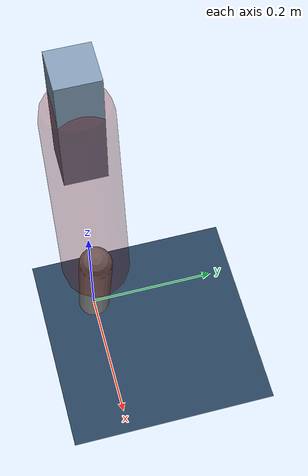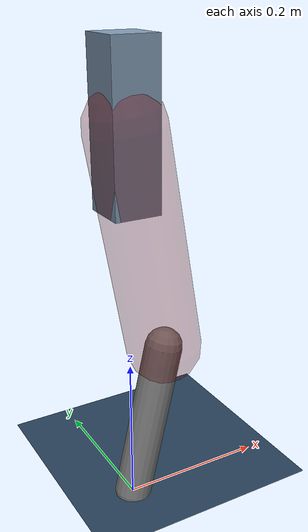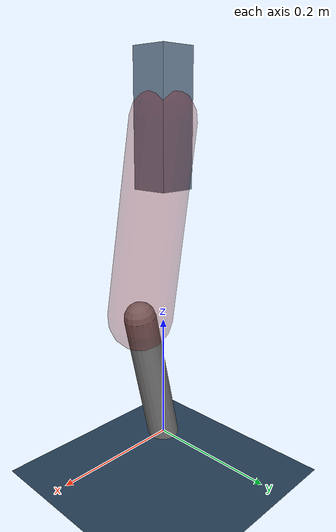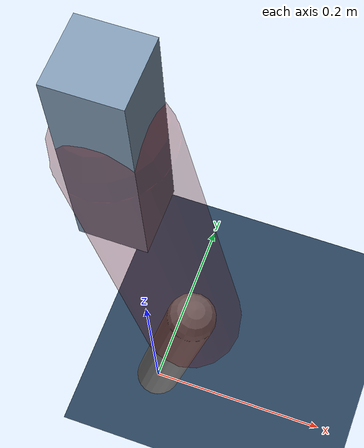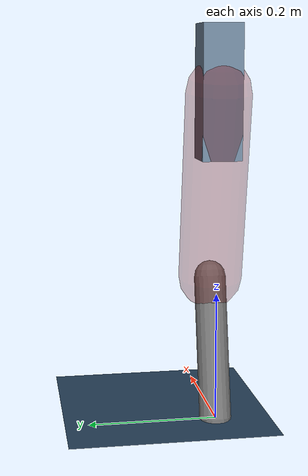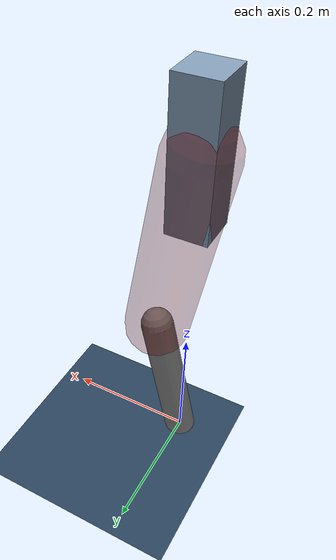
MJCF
<mujoco model="Hopper2D">
	<compiler inertiafromgeom="true" angle="radian" />
	<option timestep="0.001" integrator="implicit" cone="elliptic" solver="Newton" tolerance="1e-10" />

	<default>
		<geom contype="1" conaffinity="1" condim="3" friction="2 0.005 0.0001" solref="0.005 1" />
		<joint limited="true" damping="0.1" />
	</default>

	<asset>
		<texture name="skybox" type="skybox" builtin="gradient" rgb1=".4 .6 .8" rgb2="0 0 0" width="800" height="800" />
		<texture name="grid" type="2d" builtin="checker" rgb1=".1 .2 .3" rgb2=".2 .3 .4" width="300" height="300" mark="edge" markrgb=".2 .3 .4" />
		<material name="ground" texture="grid" texrepeat="1 1" texuniform="true" reflectance="0.1" />
		<material name="leg" rgba="0.5 0.6 0.7 1" />
	</asset>

	<worldbody>

		<geom name="floor" type="plane" size="5 5 0.25" material="ground" />

		<light directional="false" diffuse="0.8 0.8 0.8" specular="0.3 0.3 0.3" pos="0 0 2" dir="0 0 -1" />
		<light mode="targetbodycom" target="base" directional="false" diffuse="0.8 0.8 0.8" specular="0.3 0.3 0.3" pos="0 0 2" dir="0 0 -1" />

		<camera name="fixed" pos="0 -2 1" xyaxes="1 0 0 0 0 1" />
		<camera name="tracking" mode="trackcom" pos="0 -3 1" />

		<body name="root" pos="0 0 0.5084425187798205">
			<joint name="slide_x" type="slide" axis="1 0 0" range="-100 100" />
			<joint name="slide_z" type="slide" axis="0 0 1" range="0 10" />

			<body name="base" pos="0 0 0">
				<geom name="torso" type="box" size="0.03 0.03 0.1" mass="1.793" material="leg" />

				<body name="link1" pos="0 0 0" euler="0 1.3999191443553864 0">
					<joint type="hinge" axis="0 -1 0" pos="0 0 0" name="hinge1" limited="true" range="-3.14 3.14" stiffness="0" damping="0.1" />
					<geom name="thigh" type="capsule" fromto="0 0 0 0.2949977313233435 0 0" size="0.05" rgba="0.5 0 0 0.3" mass="0.9752938745730274" />

					<body name="link2" pos="0.2949977313233435 0 0" euler="0 0.39730742065941543 0">
						<joint type="hinge" axis="0 -1 0" pos="0 0 0" name="hinge2" limited="true" range="-3.14 3.14" stiffness="0" damping="0.1" />
						<geom name="shank" type="capsule" fromto="0 0 0 0.22344478745647695 0 0" size="0.025" mass="0.42055582996518154" />

					</body>
				</body>
			</body>
		</body>
	</worldbody>

	<actuator>
		<motor name="torque1" joint="hinge1" ctrlrange="-61.62483963255937 61.62483963255937" ctrllimited="true" gear="1" />
		<motor name="torque2" joint="hinge2" ctrlrange="-53.76338823687678 53.76338823687678" ctrllimited="true" gear="1" />
	</actuator>
</mujoco>
